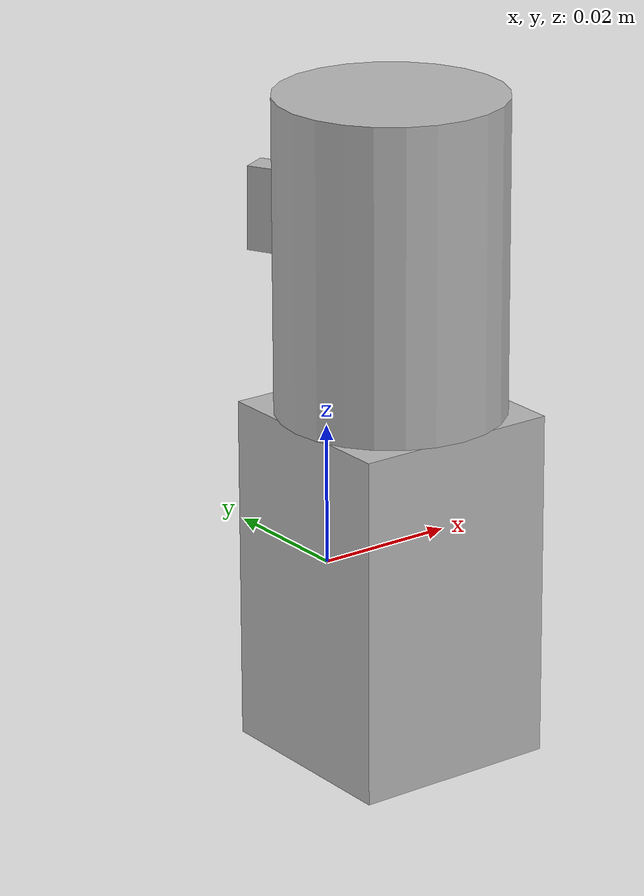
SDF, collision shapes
<?xml version="1.0" ?>
<sdf version="1.9">
  <model name="Basler Camera">
    <link name="basler_cam_link">
      <visual name="basler_cam_visual">
        <geometry>
          <mesh>
            <uri>basler_cam_visual.glb</uri>
          </mesh>
        </geometry>
      </visual>
      <collision name="135368670234ip01880201_collider_box">
        <pose>-0.0 -0.0144 0.00255 3.141593 -0.0 0.0</pose>
        <geometry>
          <box>
            <size>0.029 0.029 0.0483</size>
          </box>
        </geometry>
      </collision>
      <collision name="sphere_collider_cylinder">
        <pose>0.0 -0.014507 0.04833 0.0 0.0 0.0</pose>
        <geometry>
          <cylinder>
            <radius>0.015631</radius>
            <length>0.04326</length>
          </cylinder>
        </geometry>
      </collision>
      <collision name="59871rev000001_collider_box">
        <pose>-0.008138 -0.000452 0.052687 -1.587325 0.0 -2.633954</pose>
        <geometry>
          <box>
            <size>0.003998 0.011586 0.006875</size>
          </box>
        </geometry>
      </collision>
    </link>
  </model>
</sdf>
